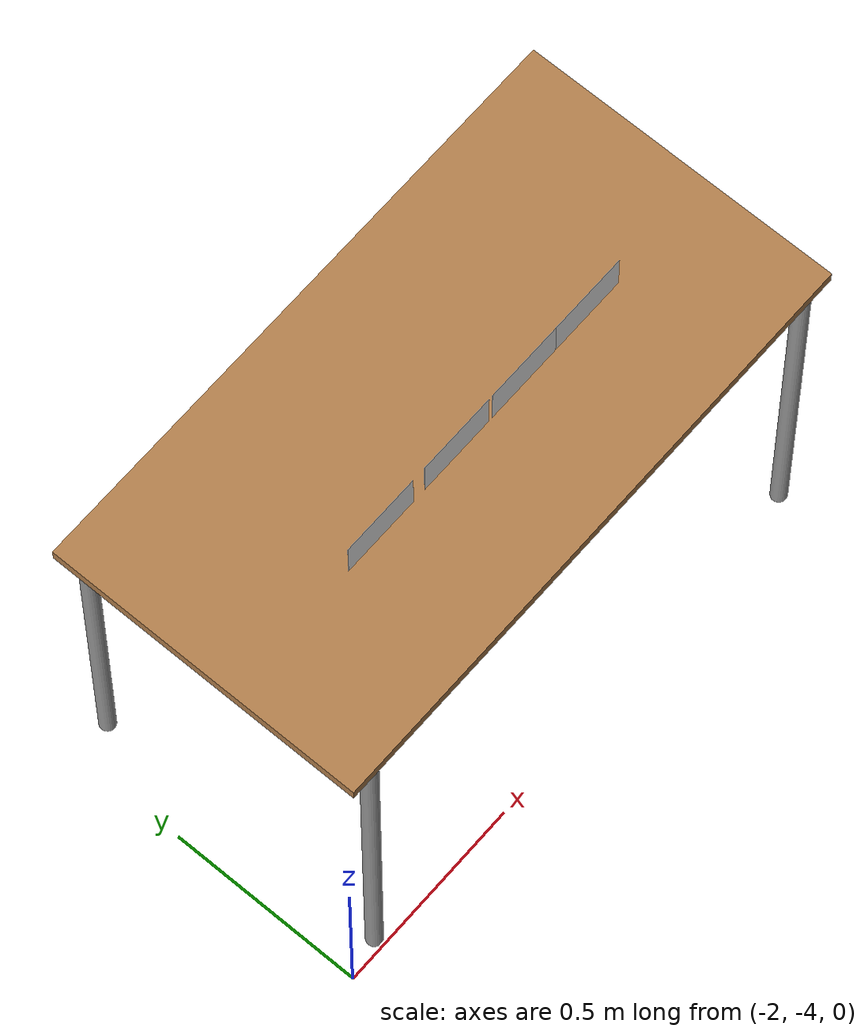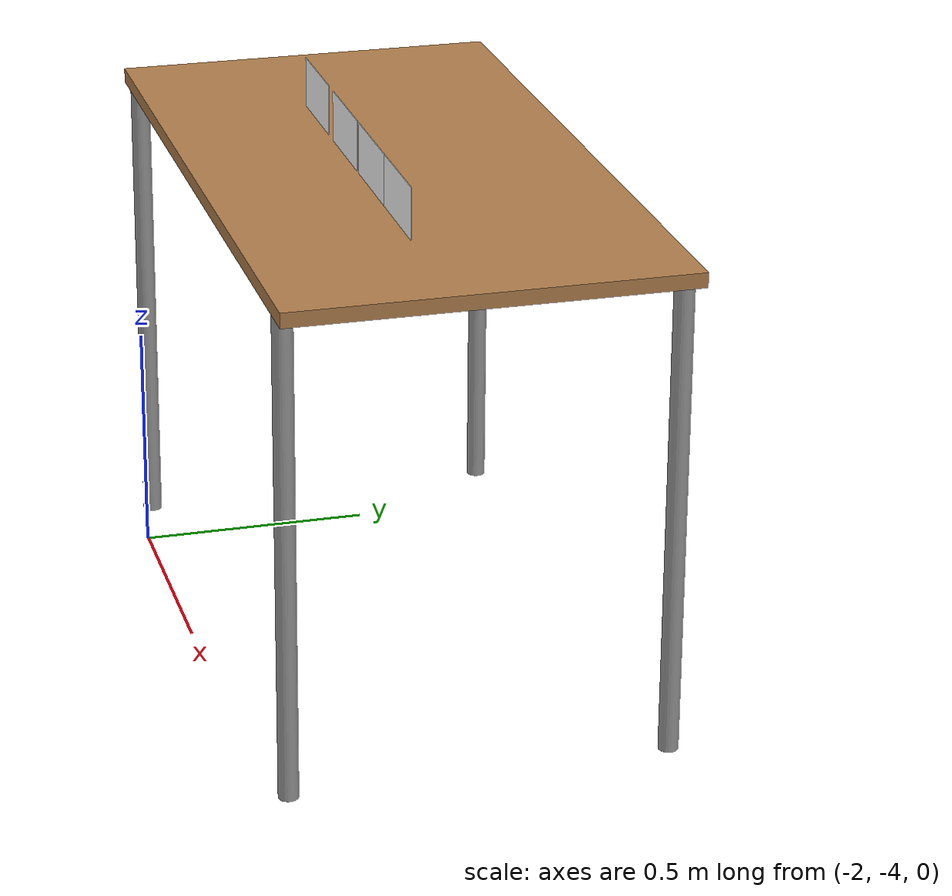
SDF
<sdf version="1.9">
 <world name="empty">
  <physics name="1ms" type="ignored">
   <max_step_size>0.01</max_step_size>
   <real_time_factor>1</real_time_factor>
   <real_time_update_rate>1000</real_time_update_rate>
  </physics>
  <plugin name="gz::sim::systems::Physics" filename="ignition-gazebo-physics-system"/>
  <plugin name="gz::sim::systems::UserCommands" filename="ignition-gazebo-user-commands-system"/>
  <plugin name="gz::sim::systems::SceneBroadcaster" filename="ignition-gazebo-scene-broadcaster-system"/>
  <plugin name="gz::sim::systems::Contact" filename="ignition-gazebo-contact-system"/>
  <plugin filename="ignition-gazebo-sensors-system" name="gz::sim::systems::Sensors">
   <render_engine>ogre2</render_engine>
  </plugin>
  <gravity>0 0 -9.8</gravity>
  <magnetic_field>6e-06 2.3e-05 -4.2e-05</magnetic_field>
  <atmosphere type="adiabatic"/>
  <scene><ambient>0.4 0.4 0.4 1</ambient><background>0.7 0.7 0.7 1</background><shadows>true</shadows></scene>
  <model name="Table">
   <static>true</static>
   <link name="link">
    <collision name="surface">
     <pose>0 0 1.0 0 0 0</pose>
     <geometry><box><size>1.5 0.8 0.03</size></box></geometry>
     <surface><friction><ode><mu>0.59999999999999998</mu><mu2>0.59999999999999998</mu2></ode></friction></surface>
    </collision>
    <visual name="visual1">
     <pose>0 0 1.0 0 0 0</pose>
     <geometry><box><size>1.5 0.8 0.03</size></box></geometry>
     <material>
      <diffuse>1 1 1 1</diffuse>
      <script><uri>file://media/materials/scripts/gazebo.material</uri><name>Gazebo/Wood</name></script>
      <pbr><metal><albedo_map>model://Table/Table_Diffuse.jpg</albedo_map></metal></pbr>
     </material>
    </visual>
    <collision name="front_left_leg">
     <pose>0.68 0.38 0.5 0 0 0</pose>
     <geometry><cylinder><radius>0.02</radius><length>1</length></cylinder></geometry>
    </collision>
    <visual name="front_left_leg">
     <pose>0.68 0.38 0.5 0 0 0</pose>
     <geometry><cylinder><radius>0.02</radius><length>1</length></cylinder></geometry>
     <material>
      <diffuse>0.5 0.5 0.5 1</diffuse>
      <script><uri>file://media/materials/scripts/gazebo.material</uri><name>Gazebo/Grey</name></script>
     </material>
    </visual>
    <collision name="front_right_leg">
     <pose>0.68 -0.38 0.5 0 0 0</pose>
     <geometry><cylinder><radius>0.02</radius><length>1</length></cylinder></geometry>
    </collision>
    <visual name="front_right_leg">
     <pose>0.68 -0.38 0.5 0 0 0</pose>
     <geometry><cylinder><radius>0.02</radius><length>1</length></cylinder></geometry>
     <material>
      <diffuse>0.5 0.5 0.5 1</diffuse>
      <script><uri>file://media/materials/scripts/gazebo.material</uri><name>Gazebo/Grey</name></script>
     </material>
    </visual>
    <collision name="back_right_leg">
     <pose>-0.68 -0.38 0.5 0 0 0</pose>
     <geometry><cylinder><radius>0.02</radius><length>1</length></cylinder></geometry>
    </collision>
    <visual name="back_right_leg">
     <pose>-0.68 -0.38 0.5 0 0 0</pose>
     <geometry><cylinder><radius>0.02</radius><length>1</length></cylinder></geometry>
     <material>
      <diffuse>0.5 0.5 0.5 1</diffuse>
      <script><uri>file://media/materials/scripts/gazebo.material</uri><name>Gazebo/Grey</name></script>
     </material>
    </visual>
    <collision name="back_left_leg">
     <pose>-0.68 0.38 0.5 0 0 0</pose>
     <geometry><cylinder><radius>0.02</radius><length>1</length></cylinder></geometry>
    </collision>
    <visual name="back_left_leg">
     <pose>-0.68 0.38 0.5 0 0 0</pose>
     <geometry><cylinder><radius>0.02</radius><length>1</length></cylinder></geometry>
     <material>
      <diffuse>0.5 0.5 0.5 1</diffuse>
      <script><uri>file://media/materials/scripts/gazebo.material</uri><name>Gazebo/Grey</name></script>
     </material>
    </visual>
    <inertial>
     <mass>1</mass>
     <inertia><ixx>1</ixx><ixy>0</ixy><ixz>0</ixz><iyy>1</iyy><iyz>0</iyz><izz>1</izz></inertia>
    </inertial>
   </link>
   <pose>-1.25 -3.62 0.11 0 -0 0</pose>
  </model>
  <include><uri>model://aruco_2</uri><name>aruco_2</name><pose>-1.54509 -3.7 1.13 0 -0 0</pose></include>
  <include><uri>model://aruco_1</uri><name>aruco_1</name><pose>-1.31 -3.7 1.13 0 -0 0</pose></include>
  <include><uri>model://aruco_0</uri><name>aruco_0</name><pose>-1.1 -3.7 1.13 0 -0 0</pose></include>
  <include><uri>model://aruco_3</uri><name>aruco_3</name><pose>-0.9 -3.7 1.13 0 -0 0</pose></include>
  <light name="sun" type="directional">
   <pose>0 0 10 0 -0 0</pose>
   <intensity>1</intensity>
   <direction>-0.5 0.1 -0.9</direction>
   <diffuse>0.8 0.8 0.8 1</diffuse>
   <specular>0.2 0.2 0.2 1</specular>
   <attenuation>
    <range>1000</range>
    <linear>0.01</linear>
    <constant>0.90000000000000002</constant>
    <quadratic>0.001</quadratic>
   </attenuation>
   <spot><inner_angle>0</inner_angle><outer_angle>0</outer_angle><falloff>0</falloff></spot>
  </light>
 </world>
</sdf>

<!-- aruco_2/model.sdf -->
<sdf version="1.9">
  <model name="aruco_2">
    <static>true</static>
    <link name="link"><inertial><mass>1.0</mass><inertia><ixx>0.1</ixx><ixy>0</ixy><ixz>0</ixz><iyy>0.1</iyy><iyz>0</iyz><izz>0.1</izz></inertia></inertial>
      <visual name="visual">
        <pose>0 0 0 0 1.5708 0</pose>
        <geometry>
          <box>
            <size>0.20 0.001 0.20</size>
          </box>
        </geometry>
        <material>
          <ambient>1 1 1 1</ambient>
          <diffuse>1 1 1 1</diffuse>
          <pbr>
            <metal>
              <albedo_map>model://aruco_2/materials/textures/aruco_2.png</albedo_map>
            </metal>
          </pbr>
        </material>
      </visual>
    </link>
  </model>
</sdf>

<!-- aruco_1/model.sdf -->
<sdf version="1.9">
  <model name="aruco_1">
    <static>true</static>
    <link name="link"><inertial><mass>1.0</mass><inertia><ixx>0.1</ixx><ixy>0</ixy><ixz>0</ixz><iyy>0.1</iyy><iyz>0</iyz><izz>0.1</izz></inertia></inertial>
      <visual name="visual">
        <pose>0 0 0 0 1.5708 0</pose>
        <geometry>
          <box>
            <size>0.20 0.001 0.20</size>
          </box>
        </geometry>
        <material>
          <ambient>1 1 1 1</ambient>
          <diffuse>1 1 1 1</diffuse>
          <pbr>
            <metal>
              <albedo_map>model://aruco_1/materials/textures/aruco_1.png</albedo_map>
            </metal>
          </pbr>
        </material>
      </visual>
    </link>
  </model>
</sdf>

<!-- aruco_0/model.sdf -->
<sdf version="1.9">
  <model name="aruco_0">
    <static>true</static>

    <link name="link"><inertial><mass>1.0</mass><inertia><ixx>0.1</ixx><ixy>0</ixy><ixz>0</ixz><iyy>0.1</iyy><iyz>0</iyz><izz>0.1</izz></inertia></inertial>

      <visual name="visual">
        <pose>0 0 0 0 1.5708 0</pose>

        <geometry>
          <box>
            <size>0.20 0.001 0.20</size>
          </box>
        </geometry>

        <material>
          <ambient>1 1 1 1</ambient>
          <diffuse>1 1 1 1</diffuse>

          <pbr>
            <metal>
              <albedo_map>model://aruco_0/materials/textures/aruco_0.png</albedo_map>
            </metal>
          </pbr>
        </material>
      </visual>

    </link>
  </model>
</sdf>

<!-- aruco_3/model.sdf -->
<sdf version="1.9">
  <model name="aruco_3">
    <static>true</static>
    <link name="link"><inertial><mass>1.0</mass><inertia><ixx>0.1</ixx><ixy>0</ixy><ixz>0</ixz><iyy>0.1</iyy><iyz>0</iyz><izz>0.1</izz></inertia></inertial>
      <visual name="visual">
        <pose>0 0 0 0 1.5708 0</pose>
        <geometry>
          <box>
            <size>0.20 0.001 0.20</size>
          </box>
        </geometry>
        <material>
          <ambient>1 1 1 1</ambient>
          <diffuse>1 1 1 1</diffuse>
          <pbr>
            <metal>
              <albedo_map>model://aruco_3/materials/textures/aruco_3.png</albedo_map>
            </metal>
          </pbr>
        </material>
      </visual>
    </link>
  </model>
</sdf>
